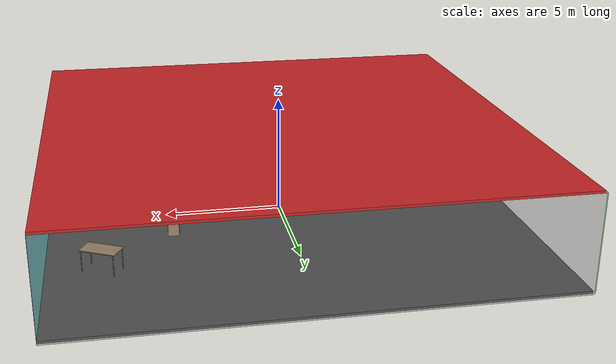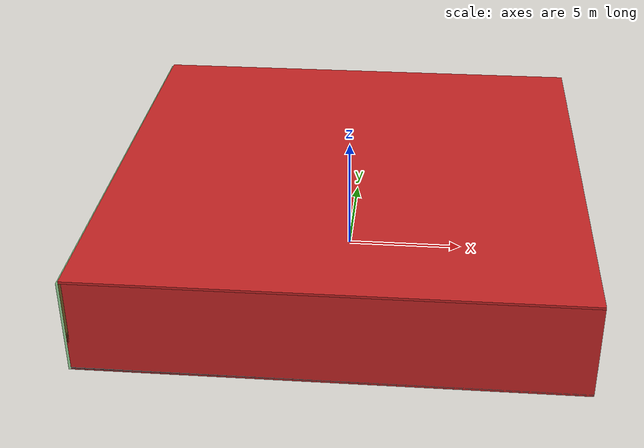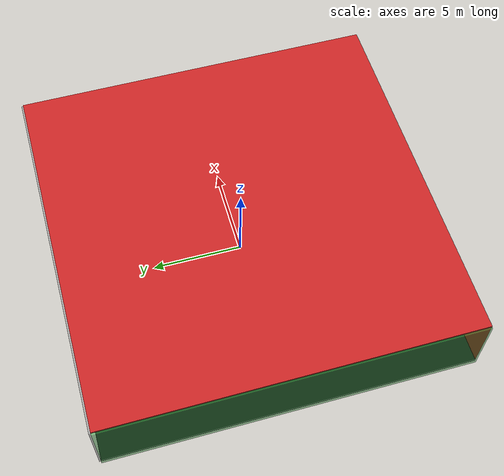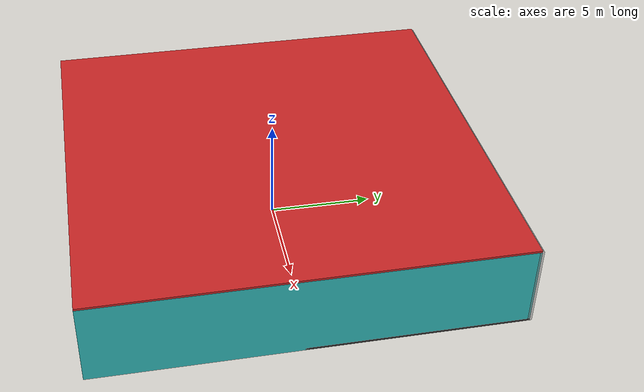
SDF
<sdf version="1.4">
 <world name="default">
  <physics type="ode">
   <max_step_size>0.001</max_step_size>
   <real_time_factor>1</real_time_factor>
   <real_time_update_rate>1000</real_time_update_rate>
   <gravity>0 0 -9.8</gravity>
  </physics>
  <scene><ambient>0.4 0.4 0.4 1</ambient><background>0.7 0.7 0.7 1</background><shadows>1</shadows></scene>
  <model name="Surrounding">
   <static>1</static>
   <link name="Ceiling">
    <collision name="Ceiling_Collision"><geometry><box><size>20 20 0.1</size></box></geometry></collision>
    <visual name="Ceiling_Visual">
     <geometry><box><size>20 20 0.1</size></box></geometry>
     <material>
      <script><uri>file://media/materials/scripts/gazebo.material</uri><name>Gazebo/RedBright</name></script>
     </material>
    </visual>
    <pose>0 0 4.05 0 0 0</pose>
   </link>
   <link name="Wall_South">
    <collision name="Wall_South_Collision">
     <geometry><box><size>20 0 4</size></box></geometry>
     <pose>0 0 2 0 -0 0</pose>
    </collision>
    <visual name="Wall_South_Visual">
     <pose>0 0 2 0 -0 0</pose>
     <geometry><box><size>20 0 4</size></box></geometry>
     <material>
      <script><uri>file://media/materials/scripts/gazebo.material</uri><name>Gazebo/Red</name></script>
     </material>
    </visual>
    <velocity_decay><linear>0</linear><angular>0</angular></velocity_decay>
    <pose>0 -10 0 0 -0 0</pose>
   </link>
   <link name="Wall_East">
    <collision name="Wall_21_Collision">
     <geometry><box><size>20 0 4</size></box></geometry>
     <pose>0 0 2 0 -0 0</pose>
    </collision>
    <visual name="Wall_21_Visual">
     <pose>0 0 2 0 -0 0</pose>
     <geometry><box><size>20 0 4</size></box></geometry>
     <material>
      <script><uri>file://media/materials/scripts/gazebo.material</uri><name>Gazebo/Turquoise</name></script>
     </material>
    </visual>
    <velocity_decay><linear>0</linear><angular>0</angular></velocity_decay>
    <pose>10 0 0 0 -0 1.5708</pose>
   </link>
   <link name="Wall_North">
    <collision name="Wall_22_Collision">
     <geometry><box><size>20 0.2 4</size></box></geometry>
     <pose>0 0 2 0 -0 0</pose>
    </collision>
    <visual name="Wall_22_Visual">
     <pose>0 0 2 0 -0 0</pose>
     <geometry><box><size>20 0.2 4</size></box></geometry>
     <material>
      <script><uri>file://media/materials/scripts/gazebo.material</uri><name>Gazebo/GreyTransparent</name></script>
     </material>
    </visual>
    <velocity_decay><linear>0</linear><angular>0</angular></velocity_decay>
    <pose>0 10 0 0 -0 0</pose>
   </link>
   <link name="Wall_West">
    <collision name="Wall_23_Collision">
     <geometry><box><size>20 0.2 4</size></box></geometry>
     <pose>0 0 2 0 -0 0</pose>
    </collision>
    <visual name="Wall_23_Visual">
     <pose>0 0 2 0 -0 0</pose>
     <geometry><box><size>20 0.2 4</size></box></geometry>
     <material>
      <script><uri>file://media/materials/scripts/gazebo.material</uri><name>Gazebo/GreenTransparent</name></script>
     </material>
    </visual>
    <velocity_decay><linear>0</linear><angular>0</angular></velocity_decay>
    <pose>-10 0 0 0 0 -1.5708</pose>
   </link>
   <link name="Ground_link">
    <collision name="collision">
     <pose>0 0 .05 0 -0 0</pose>
     <geometry><box><size>20 20 0.1</size></box></geometry>
    </collision>
    <visual name="visual">
     <pose>0 0 .05 0 -0 0</pose>
     <geometry><box><size>20 20 0.1</size></box></geometry>
     <material>
      <script><uri>file://media/materials/scripts/gazebo.material</uri><name>Gazebo/FlatBlack</name></script>
     </material>
    </visual>
   </link>
   <static>1</static>
  </model>
  <spherical_coordinates>
   <surface_model>EARTH_WGS84</surface_model>
   <latitude_deg>0</latitude_deg>
   <longitude_deg>0</longitude_deg>
   <elevation>0</elevation>
   <heading_deg>0</heading_deg>
  </spherical_coordinates>
  <light name="lightball_0" type="diffuse">
   <diffuse>0.8 0.8 0.8 1</diffuse>
   <specular>0.2 0.2 0.2 1</specular>
   <attenuation>
    <range>100</range>
    <constant>0.7</constant>
    <linear>0.01</linear>
    <quadratic>0.001</quadratic>
   </attenuation>
   <direction>-0.5 0.1 -0.9</direction>
   <pose>8.27313939738 -4.85347181859 3.78345771402 0 0 0</pose>
  </light>
  <light name="lightball_1" type="diffuse">
   <diffuse>0.8 0.8 0.8 1</diffuse>
   <specular>0.2 0.2 0.2 1</specular>
   <attenuation>
    <range>100</range>
    <constant>0.7</constant>
    <linear>0.01</linear>
    <quadratic>0.001</quadratic>
   </attenuation>
   <direction>-0.5 0.1 -0.9</direction>
   <pose>-4.82947323229 -3.3948185366 2.88338695527 0 0 0</pose>
  </light>
  <light name="lightball_2" type="diffuse">
   <diffuse>0.8 0.8 0.8 1</diffuse>
   <specular>0.2 0.2 0.2 1</specular>
   <attenuation>
    <range>100</range>
    <constant>0.7</constant>
    <linear>0.01</linear>
    <quadratic>0.001</quadratic>
   </attenuation>
   <direction>-0.5 0.1 -0.9</direction>
   <pose>-4.17990509999 0.800360427536 2.94346506912 0 0 0</pose>
  </light>
  <include>
   <uri>model://construction_cone</uri>
   <pose>-7.0869999807 -4.602505705 0 0 0 2.30199957582</pose>
  </include>
  <include>
   <uri>model://construction_cone</uri>
   <pose>-4.67144643199 -1.09240510379 0 0 0 1.33106171949</pose>
  </include>
  <include><uri>model://cabinet</uri><pose>4.86402150245 2.22336833355 0 0 0 3.13486500452</pose></include>
  <include><uri>model://cabinet</uri><pose>7.26808543777 -7.18119563549 0 0 0 0.881870906835</pose></include>
  <include><uri>model://table</uri><pose>7.79342752222 5.10387889783 0 0 0 2.6547436652</pose></include>
 </world>
</sdf>

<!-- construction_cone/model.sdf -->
<sdf version="1.5">
  <model name="Construction Cone">
    <link name="link">
      <collision name="collision">
        <geometry>
          <mesh>
            <scale>10 10 10</scale>
            <uri>file://isr-testbed/construction_cone/meshes/construction_cone.dae</uri>
          </mesh>
        </geometry>
      </collision>
      <visual name="visual">
        <geometry>
          <mesh>
            <scale>10 10 10</scale>
            <uri>file://isr-testbed/construction_cone/meshes/construction_cone.dae</uri>
          </mesh>
        </geometry>
      </visual>
    </link>
  </model>
</sdf>

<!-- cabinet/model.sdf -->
<sdf version="1.5">
  <model name="cabinet">
    <static>true</static>
    <link name="cabinet_bottom_plate">
      <inertial>
        <pose>0 0 -1 0 0 0</pose>
        <inertia>
          <ixx>2.050000</ixx>
          <ixy>0</ixy>
          <ixz>0</ixz>
          <iyy>2.050000</iyy>
          <iyz>0</iyz>
          <izz>2.050000</izz>
        </inertia>
        <mass>25.000000</mass>
      </inertial>
      <collision name="cabinet_bottom_plate_geom">
        <pose>0 0 0.010000 0 0 0</pose>
        <geometry>
          <box>
            <size>0.450000 0.450000 0.020000</size>
          </box>
        </geometry>
      </collision>
      <visual name="cabinet_bottom_plate_geom_visual">
        <pose>0 0 0.010000 0 0 0</pose>
        <geometry>
          <box>
            <size>0.450000 0.450000 0.020000</size>
          </box>
        </geometry>
        <material>
          <script>
            <uri>model://media/materials/scripts/gazebo.material</uri>
            <name>Gazebo/Wood</name>
          </script>
        </material>
      </visual>
      <collision name="cabinet_bottom_plate_geom_cabinet_back_plate">
        <pose>0.235000 0 0.510000 0 0 0</pose>
        <geometry>
          <box>
            <size>0.020000 0.450000 1.020000</size>
          </box>
        </geometry>
      </collision>
      <visual name="cabinet_bottom_plate_geom_cabinet_back_plate_visual">
        <pose>0.235000 0 0.510000 0 0 0</pose>
        <geometry>
          <box>
            <size>0.020000 0.450000 1.020000</size>
          </box>
        </geometry>
        <material>
          <script>
            <uri>model://media/materials/scripts/gazebo.material</uri>
            <name>Gazebo/Wood</name>
          </script>
        </material>
      </visual>
      <collision name="cabinet_bottom_plate_geom_cabinet_left_plate">
        <pose>0 0.235000 0.510000 0 0 0</pose>
        <geometry>
          <box>
            <size>0.450000 0.020000 1.020000</size>
          </box>
        </geometry>
      </collision>
      <visual name="cabinet_bottom_plate_geom_cabinet_left_plate_visual">
        <pose>0 0.235000 0.510000 0 0 0</pose>
        <geometry>
          <box>
            <size>0.450000 0.020000 1.020000</size>
          </box>
        </geometry>
        <material>
          <script>
            <uri>model://media/materials/scripts/gazebo.material</uri>
            <name>Gazebo/Wood</name>
          </script>
        </material>
      </visual>
      <collision name="cabinet_bottom_plate_geom_cabinet_middle_plate">
        <pose>0 0 0.510000 0 0 0</pose>
        <geometry>
          <box>
            <size>0.450000 0.450000 0.020000</size>
          </box>
        </geometry>
      </collision>
      <visual name="cabinet_bottom_plate_geom_cabinet_middle_plate_visual">
        <pose>0 0 0.510000 0 0 0</pose>
        <geometry>
          <box>
            <size>0.450000 0.450000 0.020000</size>
          </box>
        </geometry>
        <material>
          <script>
            <uri>model://media/materials/scripts/gazebo.material</uri>
            <name>Gazebo/Wood</name>
          </script>
        </material>
      </visual>
      <collision name="cabinet_bottom_plate_geom_cabinet_right_plate">
        <pose>0 -0.235000 0.510000 0 0 0</pose>
        <geometry>
          <box>
            <size>0.450000 0.020000 1.020000</size>
          </box>
        </geometry>
      </collision>
      <visual name="cabinet_bottom_plate_geom_cabinet_right_plate_visual">
        <pose>0 -0.235000 0.510000 0 0 0</pose>
        <geometry>
          <box>
            <size>0.450000 0.020000 1.020000</size>
          </box>
        </geometry>
        <material>
          <script>
            <uri>model://media/materials/scripts/gazebo.material</uri>
            <name>Gazebo/Wood</name>
          </script>
        </material>
      </visual>
      <collision name="cabinet_bottom_plate_geom_cabinet_top_plate">
        <pose>0 0 1.010000 0 0 0</pose>
        <geometry>
          <box>
            <size>0.450000 0.450000 0.020000</size>
          </box>
        </geometry>
      </collision>
      <visual name="cabinet_bottom_plate_geom_cabinet_top_plate_visual">
        <pose>0 0 1.010000 0 0 0</pose>
        <geometry>
          <box>
            <size>0.450000 0.450000 0.020000</size>
          </box>
        </geometry>
        <material>
          <script>
            <uri>model://media/materials/scripts/gazebo.material</uri>
            <name>Gazebo/Wood</name>
          </script>
        </material>
      </visual>
    </link>
  </model>
</sdf>

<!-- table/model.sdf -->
<sdf version="1.5">
  <model name="table">
    <static>true</static>
    <link name="link">
      <collision name="surface">
        <pose>0 0 1.0 0 0 0</pose>
        <geometry>
          <box>
            <size>1.5 0.8 0.03</size>
          </box>
        </geometry>
        <surface>
          <friction>
            <ode>
              <mu>0.6</mu>
              <mu2>0.6</mu2>
            </ode>
          </friction>
        </surface>
      </collision>
      <visual name="visual1">
        <pose>0 0 1.0 0 0 0</pose>
        <geometry>
          <box>
            <size>1.5 0.8 0.03</size>
          </box>
        </geometry>
        <material>
          <script>
            <uri>model://media/materials/scripts/gazebo.material</uri>
            <name>Gazebo/Wood</name>
          </script>
        </material>
      </visual>
      <collision name="front_left_leg">
        <pose>0.68 0.38 0.5 0 0 0</pose>
        <geometry>
          <cylinder>
            <radius>0.02</radius>
            <length>1.0</length>
          </cylinder>
        </geometry>
      </collision>
      <visual name="front_left_leg">
        <pose>0.68 0.38 0.5 0 0 0</pose>
        <geometry>
          <cylinder>
            <radius>0.02</radius>
            <length>1.0</length>
          </cylinder>
        </geometry>
        <material>
          <script>
            <uri>model://media/materials/scripts/gazebo.material</uri>
            <name>Gazebo/Grey</name>
          </script>
        </material>
      </visual>
      <collision name="front_right_leg">
        <pose>0.68 -0.38 0.5 0 0 0</pose>
        <geometry>
          <cylinder>
            <radius>0.02</radius>
            <length>1.0</length>
          </cylinder>
        </geometry>
      </collision>
      <visual name="front_right_leg">
        <pose>0.68 -0.38 0.5 0 0 0</pose>
        <geometry>
          <cylinder>
            <radius>0.02</radius>
            <length>1.0</length>
          </cylinder>
        </geometry>
        <material>
          <script>
            <uri>model://media/materials/scripts/gazebo.material</uri>
            <name>Gazebo/Grey</name>
          </script>
        </material>
      </visual>
      <collision name="back_right_leg">
        <pose>-0.68 -0.38 0.5 0 0 0</pose>
        <geometry>
          <cylinder>
            <radius>0.02</radius>
            <length>1.0</length>
          </cylinder>
        </geometry>
      </collision>
      <visual name="back_right_leg">
        <pose>-0.68 -0.38 0.5 0 0 0</pose>
        <geometry>
          <cylinder>
            <radius>0.02</radius>
            <length>1.0</length>
          </cylinder>
        </geometry>
        <material>
          <script>
            <uri>model://media/materials/scripts/gazebo.material</uri>
            <name>Gazebo/Grey</name>
          </script>
        </material>
      </visual>
      <collision name="back_left_leg">
        <pose>-0.68 0.38 0.5 0 0 0</pose>
        <geometry>
          <cylinder>
            <radius>0.02</radius>
            <length>1.0</length>
          </cylinder>
        </geometry>
      </collision>
      <visual name="back_left_leg">
        <pose>-0.68 0.38 0.5 0 0 0</pose>
        <geometry>
          <cylinder>
            <radius>0.02</radius>
            <length>1.0</length>
          </cylinder>
        </geometry>
        <material>
          <script>
            <uri>model://media/materials/scripts/gazebo.material</uri>
            <name>Gazebo/Grey</name>
          </script>
        </material>
      </visual>
    </link>
  </model>
</sdf>
